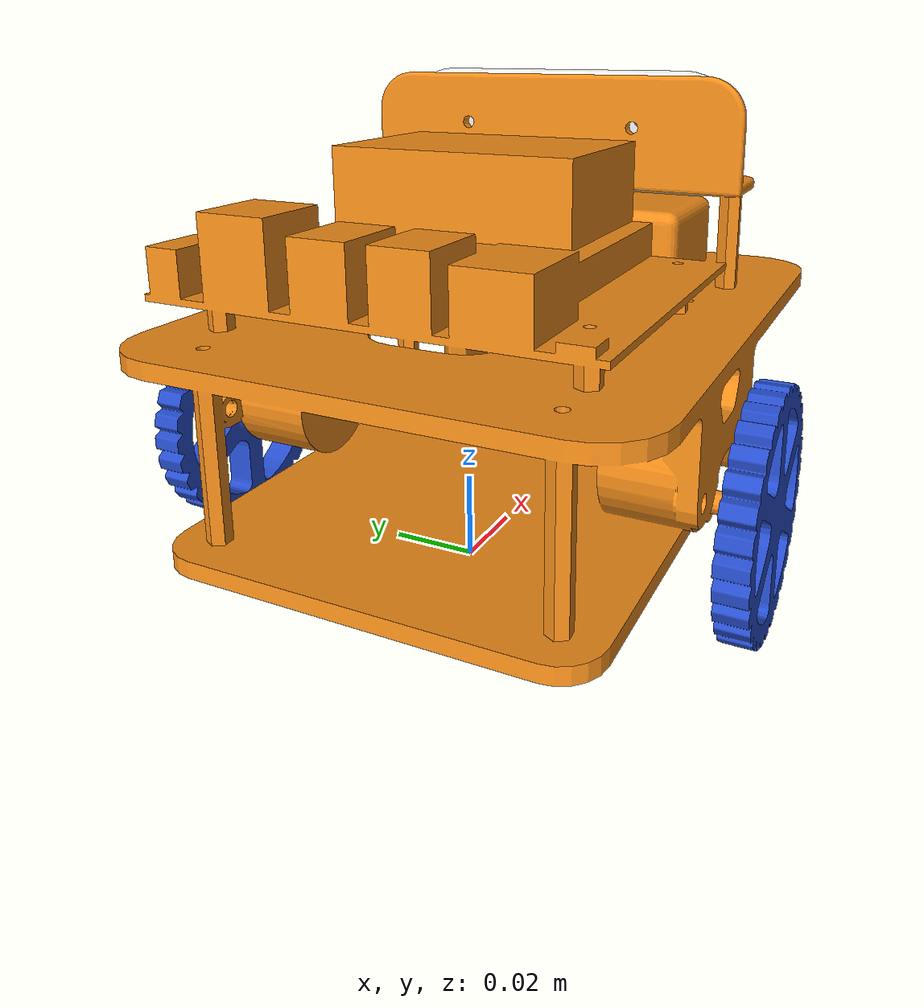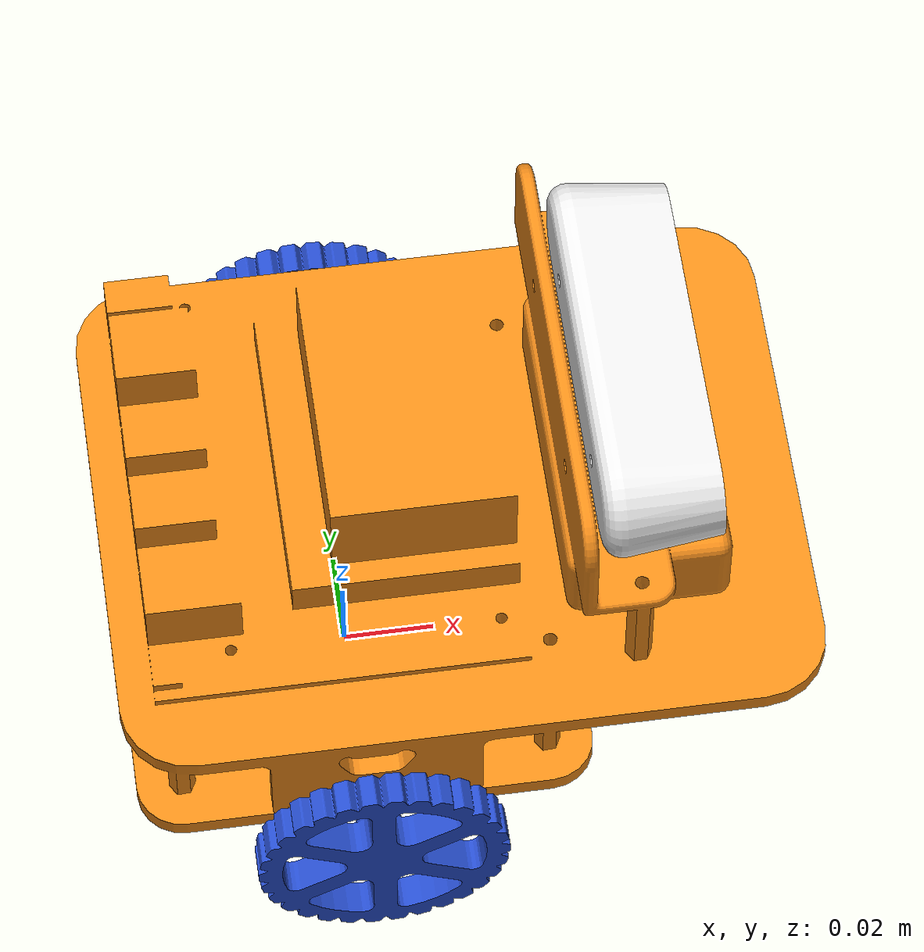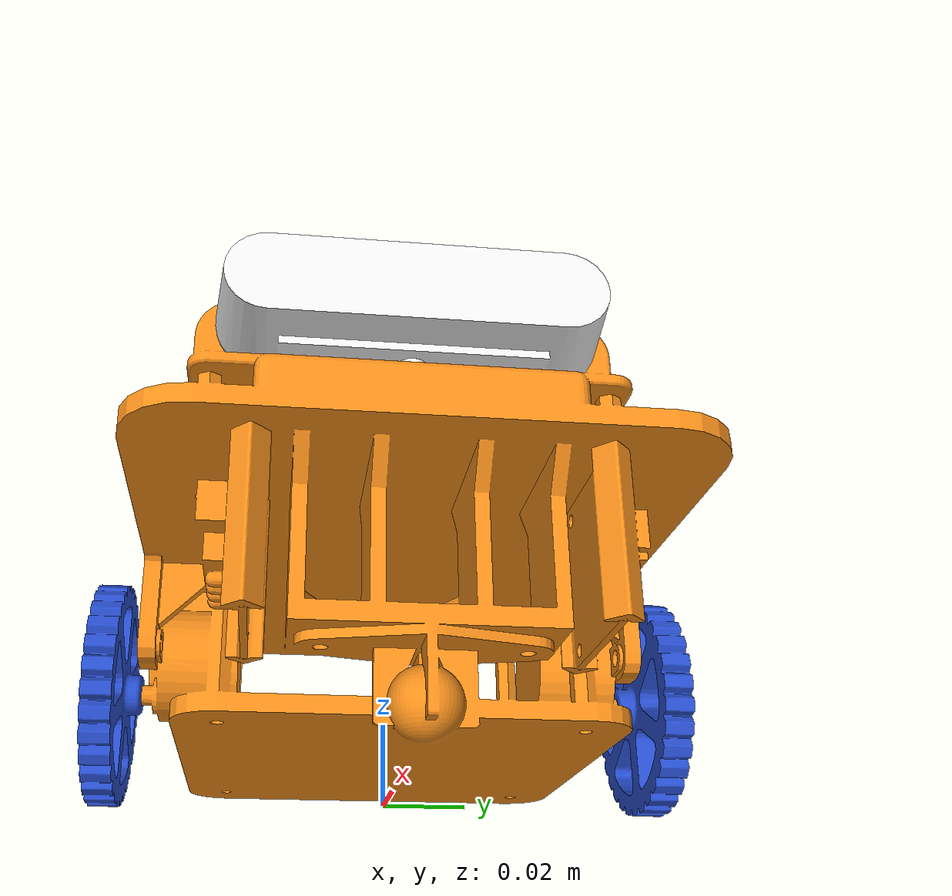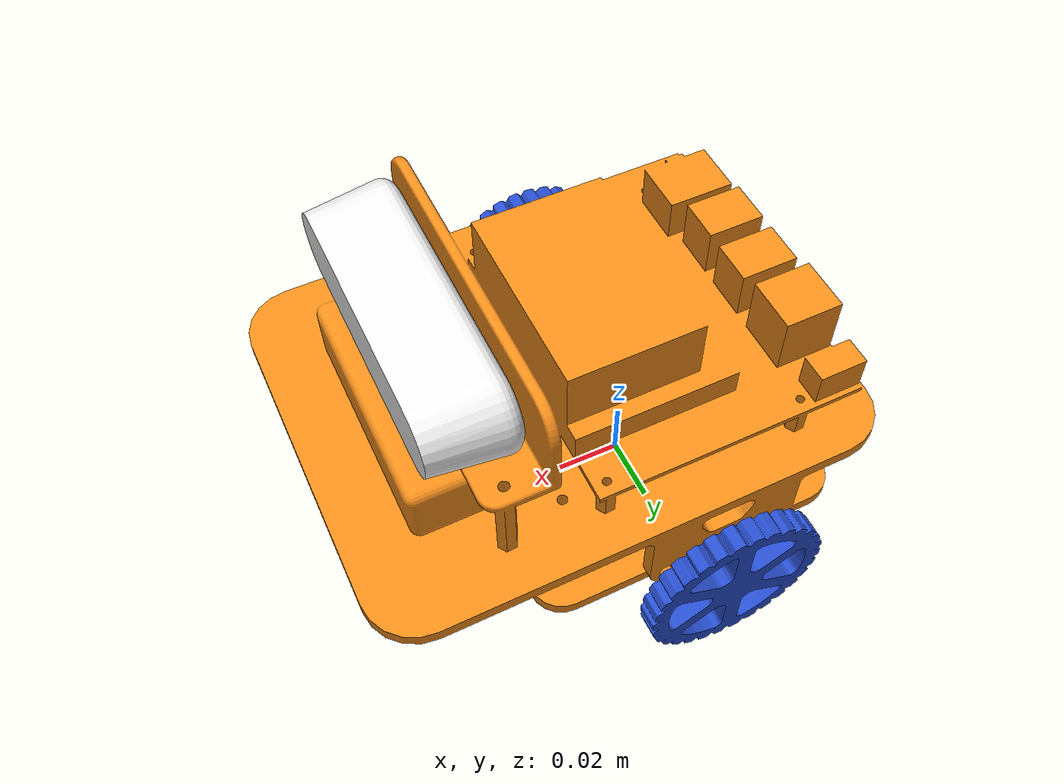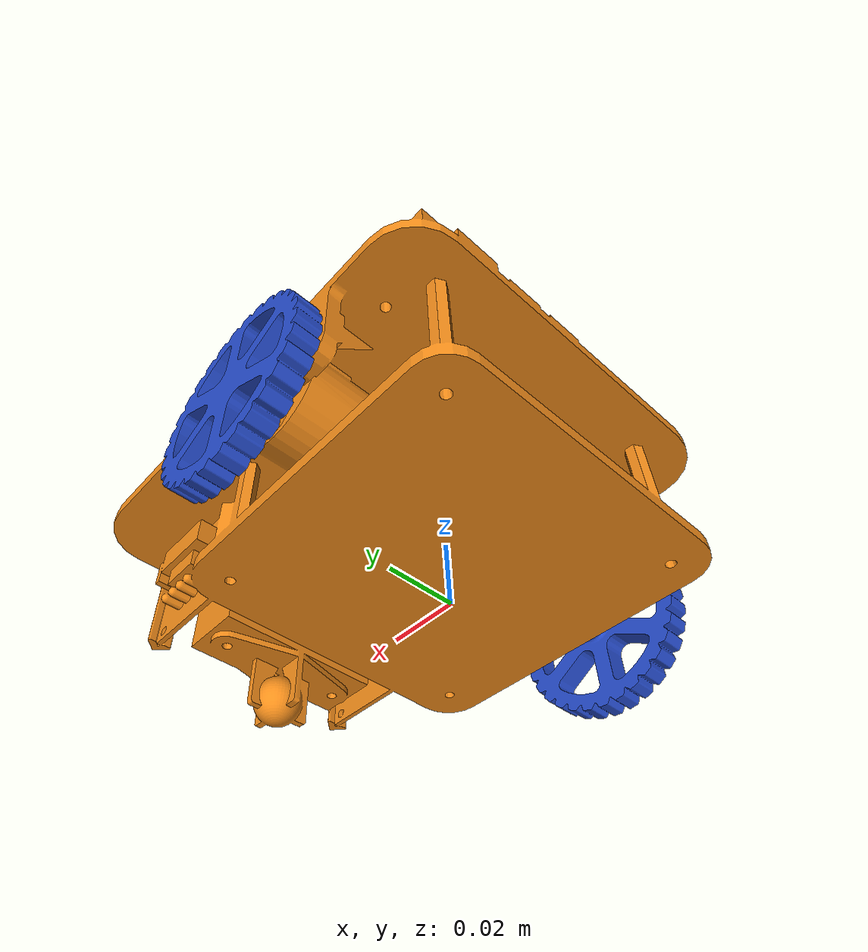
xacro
<?xml version="1.0"?>
<robot name="" xmlns:xacro="http://www.ros.org/wiki/xacro">
    <xacro:include filename="$(find simulation)/urdf/materials.xacro" />
    <xacro:include filename="$(find simulation)/urdf/model.gazebo" />

    <link name="base_link">
        <inertial>
            <origin xyz="0.0 0.0 0.0" rpy="0.0 0.0 0.0" />
            <mass value="1" />
            <inertia
                ixx="1.0" ixy="0.0" ixz="0.0"
                iyy="1.0" iyz="0.0"
                izz="1.0" />
        </inertial>
        <visual>
            <origin xyz="0.14 -0.028 0.14" rpy="0 -3.14159265 -1.57079632" />
            <geometry>
                <mesh filename="package://simulation/meshes/base.STL" />
            </geometry>
        </visual>
        <collision>
            <origin xyz="0.14 -0.028 0.14" rpy="0 -3.14159265 -1.57079632" />
            <geometry>
                <mesh filename="package://simulation/meshes/base.STL" />
            </geometry>
        </collision>
  </link>

  <link name="left_wheel">
        <inertial>
            <origin xyz="0.0 0.0 0.0" rpy="0.0 0.0 0.0" />
            <mass value="0.05" />
            <inertia
                ixx="1.0" ixy="0.0" ixz="0.0"
                iyy="1.0" iyz="0.0"
                izz="1.0" />
        </inertial>
        <visual>
            <origin xyz="0.0 0.0 0.0" rpy="0.0 0.0 3.14159265" />
            <geometry>
                <mesh filename="package://simulation/meshes/link_l.STL" />
            </geometry>
        </visual>
        <collision>
            <origin xyz="0.0 0.0 0.0" rpy="0.0 0.0 0.0" />
            <geometry>
                <mesh filename="package://simulation/meshes/link_l.STL" />
            </geometry>
        </collision>
  </link>

    <joint name="joint_l" type="continuous">
        <origin xyz="0.0 0.06 0.026" rpy="0.0 0.0 0.0" />
        <parent link="base_link" />
        <child link="left_wheel" />
        <axis xyz="0 1 0" />
        <limit effort="1000" velocity="1000"/>
        <joint_properties damping="1.0" friction="1.0"/>
    </joint>

    <link name="right_wheel">
        <inertial>
            <origin xyz="0.0 0.0 0" rpy="0.0 0.0 0.0" />
            <mass value="0.05" />
            <inertia
                    ixx="1.0" ixy="0.0" ixz="0.0"
                    iyy="1.0" iyz="0.0"
                    izz="1.0" />
        </inertial>
        <visual>
            <origin xyz="0.0 0.0 0.0" rpy="0.0 0.0 0.0" />
            <geometry>
                <mesh filename="package://simulation/meshes/link_r.STL" />
            </geometry>
        </visual>
        <collision>
            <origin xyz="0.0 0.0 0.0" rpy="0.0 0.0 0.0" />
            <geometry>
                <mesh filename="package://simulation/meshes/link_r.STL" />
            </geometry>
        </collision>
    </link>

    <joint name="joint_r" type="continuous">
        <origin xyz="0.0 -0.06 0.026" rpy="0.0 0.0 0.0" />
        <parent link="base_link" />
        <child link="right_wheel" />
        <axis xyz="0 1 0" />
        <limit effort="1000" velocity="1000"/>
        <joint_properties damping="1.0" friction="1.0"/>
    </joint>

    <link name="camera">
        <inertial>
            <origin xyz="0.0 0.0 0.0" rpy="0.0 0.0 0.0" />
            <mass value="0.5" />
            <inertia
                    ixx="1.0" ixy="0.0" ixz="0.0"
                    iyy="1.0" iyz="0.0"
                    izz="1.0" />
        </inertial>
        <visual>
            <origin xyz="0.0 0.0 0.0" rpy="0.0 0.0 0.0" />
            <geometry>
                <mesh filename="package://simulation/meshes/link_cam.STL" />
            </geometry>
        </visual>
        <collision>
            <origin xyz="0.0 0.0 0.0" rpy="0.0 0.0 0.0" />
            <geometry>
                <mesh filename="package://simulation/meshes/link_cam.STL" />
            </geometry>
        </collision>
    </link>

    <joint name="joint_cam" type="fixed">
        <origin xyz="0.05 0.0 0.1" rpy="0.0 3.14159265 -1.57079632" />
        <parent link="base_link" />
        <child link="camera" />
    </joint>
</robot>
